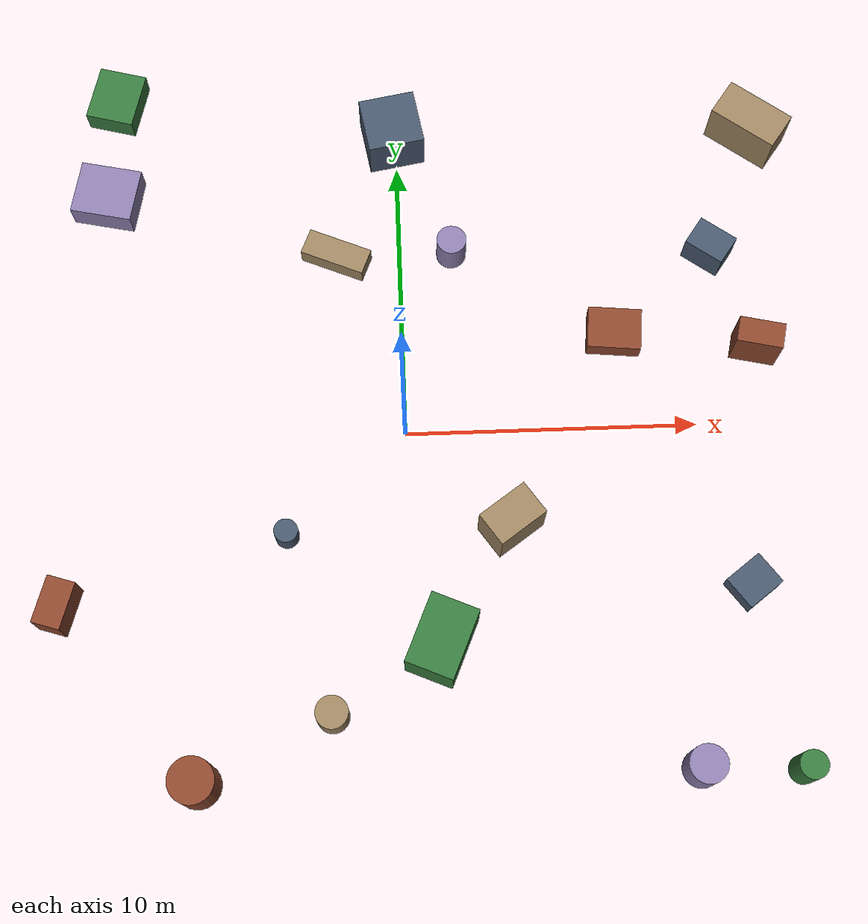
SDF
<sdf version="1.10">
 <world name="robotx_task1_uav_view">
  <gravity>0 0 -9.81</gravity>
  <physics name="physics" type="ode">
   <max_step_size>0.002</max_step_size>
   <real_time_factor>1.0</real_time_factor>
  </physics>
  <scene>
   <ambient>0.22 0.20 0.18 1.0</ambient>
   <background>0.74 0.55 0.44 1.0</background>
   <shadows>true</shadows>
   <grid>false</grid>
  </scene>
  <light name="sun" type="directional">
   <pose>0 0 300 0 0 0</pose>
   <diffuse>0.95 0.74 0.56 1.0</diffuse>
   <specular>1.00 0.87 0.71 1.0</specular>
   <direction>-0.40 0.20 -0.88</direction>
   <attenuation>
    <range>2500</range>
    <constant>0.85</constant>
    <linear>0.001</linear>
    <quadratic>0.00005</quadratic>
   </attenuation>
  </light>
  <plugin filename="gz-sim-physics-system" name="gz::sim::systems::Physics"/>
  <plugin filename="gz-sim-user-commands-system" name="gz::sim::systems::UserCommands"/>
  <plugin filename="gz-sim-scene-broadcaster-system" name="gz::sim::systems::SceneBroadcaster"/>
  <plugin filename="gz-sim-sensors-system" name="gz::sim::systems::Sensors">
   <render_engine>ogre2</render_engine>
  </plugin>
  <model name="scene_clutter_box_000">
   <static>true</static>
   <pose>-2.234 6.591 0.393 0 0 -1.963778</pose>
   <link name="link">
    <visual name="v">
     <geometry><box><size>0.913 2.289 0.746</size></box></geometry>
     <material><ambient>0.45 0.38 0.32 1.0</ambient><diffuse>0.62 0.52 0.38 1.0</diffuse></material>
    </visual>
   </link>
  </model>
  <model name="scene_clutter_box_001">
   <static>true</static>
   <pose>11.358 -5.661 0.397 0 0 -2.498833</pose>
   <link name="link">
    <visual name="v">
     <geometry><box><size>1.415 1.217 0.754</size></box></geometry>
     <material><ambient>0.18 0.22 0.28 1.0</ambient><diffuse>0.28 0.34 0.42 1.0</diffuse></material>
    </visual>
   </link>
  </model>
  <model name="scene_clutter_box_002">
   <static>true</static>
   <pose>12.195 2.659 0.910 0 0 -0.221235</pose>
   <link name="link">
    <visual name="v">
     <geometry><box><size>1.573 0.883 1.779</size></box></geometry>
     <material><ambient>0.35 0.16 0.12 1.0</ambient><diffuse>0.55 0.28 0.18 1.0</diffuse></material>
    </visual>
   </link>
  </model>
  <model name="scene_clutter_cyl_003">
   <static>true</static>
   <pose>12.443 -11.768 0.923 0 0 1.617422</pose>
   <link name="link">
    <visual name="v">
     <geometry><cylinder><radius>0.471</radius><length>1.745</length></cylinder></geometry>
     <material><ambient>0.12 0.30 0.14 1.0</ambient><diffuse>0.22 0.48 0.24 1.0</diffuse></material>
    </visual>
   </link>
  </model>
  <model name="scene_clutter_cyl_004">
   <static>true</static>
   <pose>9.179 -11.616 0.859 0 0 -0.820438</pose>
   <link name="link">
    <visual name="v">
     <geometry><cylinder><radius>0.635</radius><length>1.618</length></cylinder></geometry>
     <material><ambient>0.40 0.35 0.50 1.0</ambient><diffuse>0.55 0.50 0.68 1.0</diffuse></material>
    </visual>
   </link>
  </model>
  <model name="scene_clutter_box_005">
   <static>true</static>
   <pose>3.429 -3.396 0.987 0 0 -2.530135</pose>
   <link name="link">
    <visual name="v">
     <geometry><box><size>1.847 1.235 1.935</size></box></geometry>
     <material><ambient>0.45 0.38 0.32 1.0</ambient><diffuse>0.62 0.52 0.38 1.0</diffuse></material>
    </visual>
   </link>
  </model>
  <model name="scene_clutter_box_006">
   <static>true</static>
   <pose>-0.142 11.087 0.906 0 0 1.748245</pose>
   <link name="link">
    <visual name="v">
     <geometry><box><size>1.934 1.968 1.772</size></box></geometry>
     <material><ambient>0.18 0.22 0.28 1.0</ambient><diffuse>0.28 0.34 0.42 1.0</diffuse></material>
    </visual>
   </link>
  </model>
  <model name="scene_clutter_box_007">
   <static>true</static>
   <pose>7.349 3.367 0.401 0 0 -1.666658</pose>
   <link name="link">
    <visual name="v">
     <geometry><box><size>1.460 1.848 0.761</size></box></geometry>
     <material><ambient>0.35 0.16 0.12 1.0</ambient><diffuse>0.55 0.28 0.18 1.0</diffuse></material>
    </visual>
   </link>
  </model>
  <model name="scene_clutter_box_008">
   <static>true</static>
   <pose>0.972 -7.322 0.982 0 0 1.164983</pose>
   <link name="link">
    <visual name="v">
     <geometry><box><size>2.426 1.678 1.924</size></box></geometry>
     <material><ambient>0.12 0.30 0.14 1.0</ambient><diffuse>0.22 0.48 0.24 1.0</diffuse></material>
    </visual>
   </link>
  </model>
  <model name="scene_clutter_box_009">
   <static>true</static>
   <pose>-10.318 9.072 0.533 0 0 2.934612</pose>
   <link name="link">
    <visual name="v">
     <geometry><box><size>2.149 1.875 1.027</size></box></geometry>
     <material><ambient>0.40 0.35 0.50 1.0</ambient><diffuse>0.55 0.50 0.68 1.0</diffuse></material>
    </visual>
   </link>
  </model>
  <model name="scene_clutter_box_010">
   <static>true</static>
   <pose>12.630 10.877 0.934 0 0 -2.201666</pose>
   <link name="link">
    <visual name="v">
     <geometry><box><size>1.356 2.486 1.828</size></box></geometry>
     <material><ambient>0.45 0.38 0.32 1.0</ambient><diffuse>0.62 0.52 0.38 1.0</diffuse></material>
    </visual>
   </link>
  </model>
  <model name="scene_clutter_cyl_011">
   <static>true</static>
   <pose>-4.077 -3.479 0.513 0 0 0.368016</pose>
   <link name="link">
    <visual name="v">
     <geometry><cylinder><radius>0.405</radius><length>0.926</length></cylinder></geometry>
     <material><ambient>0.18 0.22 0.28 1.0</ambient><diffuse>0.28 0.34 0.42 1.0</diffuse></material>
    </visual>
   </link>
  </model>
  <model name="scene_clutter_cyl_012">
   <static>true</static>
   <pose>-7.006 -11.597 1.094 0 0 0.404822</pose>
   <link name="link">
    <visual name="v">
     <geometry><cylinder><radius>0.758</radius><length>2.087</length></cylinder></geometry>
     <material><ambient>0.35 0.16 0.12 1.0</ambient><diffuse>0.55 0.28 0.18 1.0</diffuse></material>
    </visual>
   </link>
  </model>
  <model name="scene_clutter_box_013">
   <static>true</static>
   <pose>-10.064 12.879 0.464 0 0 -0.253756</pose>
   <link name="link">
    <visual name="v">
     <geometry><box><size>1.690 1.943 0.888</size></box></geometry>
     <material><ambient>0.12 0.30 0.14 1.0</ambient><diffuse>0.22 0.48 0.24 1.0</diffuse></material>
    </visual>
   </link>
  </model>
  <model name="scene_clutter_cyl_014">
   <static>true</static>
   <pose>1.819 6.617 0.717 0 0 -2.879593</pose>
   <link name="link">
    <visual name="v">
     <geometry><cylinder><radius>0.518</radius><length>1.333</length></cylinder></geometry>
     <material><ambient>0.40 0.35 0.50 1.0</ambient><diffuse>0.55 0.50 0.68 1.0</diffuse></material>
    </visual>
   </link>
  </model>
  <model name="scene_clutter_cyl_015">
   <static>true</static>
   <pose>-2.642 -9.552 0.700 0 0 0.951882</pose>
   <link name="link">
    <visual name="v">
     <geometry><cylinder><radius>0.545</radius><length>1.300</length></cylinder></geometry>
     <material><ambient>0.45 0.38 0.32 1.0</ambient><diffuse>0.62 0.52 0.38 1.0</diffuse></material>
    </visual>
   </link>
  </model>
  <model name="scene_clutter_box_016">
   <static>true</static>
   <pose>10.880 6.332 0.647 0 0 2.520090</pose>
   <link name="link">
    <visual name="v">
     <geometry><box><size>1.439 1.073 1.255</size></box></geometry>
     <material><ambient>0.18 0.22 0.28 1.0</ambient><diffuse>0.28 0.34 0.42 1.0</diffuse></material>
    </visual>
   </link>
  </model>
  <model name="scene_clutter_box_017">
   <static>true</static>
   <pose>-11.611 -5.701 0.713 0 0 1.263573</pose>
   <link name="link">
    <visual name="v">
     <geometry><box><size>1.616 0.972 1.386</size></box></geometry>
     <material><ambient>0.35 0.16 0.12 1.0</ambient><diffuse>0.55 0.28 0.18 1.0</diffuse></material>
    </visual>
   </link>
  </model>
  <model name="uav_dataset_camera">
   <static>false</static>
   <pose>0 0 26 0 0 0</pose>
   <plugin filename="librobotx_overhead_motion_plugin.dylib" name="robotx::OverheadMotionPlugin">
    <radius_x_m>8.83301</radius_x_m>
    <radius_y_m>9.10104</radius_y_m>
    <angular_speed_rad_s>0.075417</angular_speed_rad_s>
    <phase_rad>5.876744</phase_rad>
    <z_wobble_m>0.11687</z_wobble_m>
    <z_wobble_hz>0.05077</z_wobble_hz>
    <z_wobble_phase_rad>3.116154</z_wobble_phase_rad>
   </plugin>
   <link name="camera_link">
    <gravity>false</gravity>
    <sensor name="top_down_rgb" type="camera">
     <always_on>true</always_on>
     <update_rate>20</update_rate>
     <pose>0 0 0 0 1.57079632679 0</pose>
     <camera>
      <horizontal_fov>1.05</horizontal_fov>
      <image><width>1920</width><height>1080</height><format>R8G8B8</format></image>
      <clip><near>0.2</near><far>600</far></clip>
     </camera>
     <topic>/robotx/uav/camera/image_raw</topic>
     <visualize>true</visualize>
    </sensor>
   </link>
  </model>
 </world>
</sdf>
